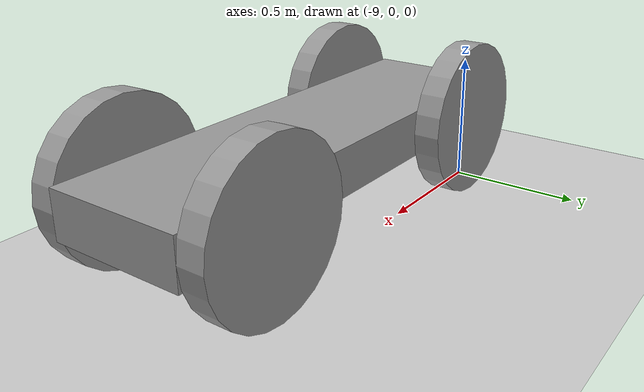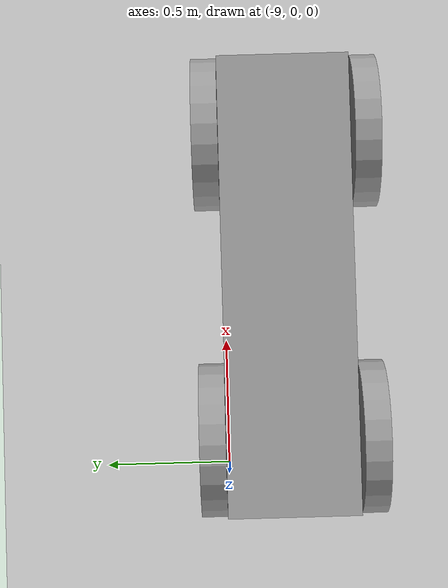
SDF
<sdf version="1.7">
 <world name="default">
  <model name="ground_plane">
   <static>1</static>
   <link name="link">
    <collision name="collision">
     <geometry><plane><normal>0 0 1</normal><size>100 100</size></plane></geometry>
     <surface>
      <contact><collide_bitmask>65535</collide_bitmask></contact>
      <friction><ode><mu>100</mu><mu2>50</mu2></ode></friction>
     </surface>
    </collision>
    <visual name="visual">
     <cast_shadows>0</cast_shadows>
     <geometry><plane><normal>0 0 1</normal><size>100 100</size></plane></geometry>
     <material>
      <script><uri>file://media/materials/scripts/gazebo.material</uri><name>Gazebo/Grey</name></script>
     </material>
    </visual>
   </link>
  </model>
  <model name="4WheelRobot">
   <link name="link_0">
    <inertial>
     <mass>0.166831</mass>
     <inertia>
      <ixx>0.0041914</ixx>
      <ixy>0</ixy>
      <ixz>0</ixz>
      <iyy>0.045684</iyy>
      <iyz>0</iyz>
      <izz>0.0489956</izz>
     </inertia>
    </inertial>
    <pose>2.04119 -2.4071 0.5 0 -0 0</pose>
    <visual name="visual">
     <geometry><box><size>1.80398 0.519461 0.177887</size></box></geometry>
     <material>
      <lighting>1</lighting>
      <script><uri>file://media/materials/scripts/gazebo.material</uri><name>Gazebo/Grey</name></script>
      <shader type="pixel"><normal_map>__default__</normal_map></shader>
      <emissive>0 0 0 1</emissive>
      <ambient>0.3 0.3 0.3 1</ambient>
      <diffuse>0.7 0.7 0.7 1</diffuse>
      <specular>0.01 0.01 0.01 1</specular>
     </material>
    </visual>
    <collision name="collision">
     <geometry><box><size>1.80398 0.519461 0.177887</size></box></geometry>
     <surface>
      <friction>
       <ode><mu>1</mu><mu2>1</mu2><fdir1>0 0 0</fdir1><slip1>0</slip1><slip2>0</slip2></ode>
       <torsional>
        <coefficient>1</coefficient>
        <patch_radius>0</patch_radius>
        <surface_radius>0</surface_radius>
        <use_patch_radius>1</use_patch_radius>
        <ode><slip>0</slip></ode>
       </torsional>
      </friction>
      <bounce><restitution_coefficient>0</restitution_coefficient><threshold>1e+06</threshold></bounce>
      <contact>
       <collide_without_contact>0</collide_without_contact>
       <collide_without_contact_bitmask>1</collide_without_contact_bitmask>
       <collide_bitmask>1</collide_bitmask>
       <ode>
        <soft_cfm>0</soft_cfm>
        <soft_erp>0.2</soft_erp>
        <kp>1e+13</kp>
        <kd>1</kd>
        <max_vel>0.01</max_vel>
        <min_depth>0</min_depth>
       </ode>
       <bullet>
        <split_impulse>1</split_impulse>
        <split_impulse_penetration_threshold>-0.01</split_impulse_penetration_threshold>
        <soft_cfm>0</soft_cfm>
        <soft_erp>0.2</soft_erp>
        <kp>1e+13</kp>
        <kd>1</kd>
       </bullet>
      </contact>
     </surface>
    </collision>
   </link>
   <link name="link_1">
    <inertial>
     <mass>1</mass>
     <inertia><ixx>0.145833</ixx><ixy>0</ixy><ixz>0</ixz><iyy>0.145833</iyy><iyz>0</iyz><izz>0.125</izz></inertia>
    </inertial>
    <pose>2.64318 -2.71686 0.5 1.5707 -0 0</pose>
    <visual name="visual">
     <geometry><cylinder><radius>0.3</radius><length>0.1</length></cylinder></geometry>
     <material>
      <lighting>1</lighting>
      <script><uri>file://media/materials/scripts/gazebo.material</uri><name>Gazebo/Grey</name></script>
      <shader type="pixel"><normal_map>__default__</normal_map></shader>
      <ambient>0.3 0.3 0.3 1</ambient>
      <diffuse>0.7 0.7 0.7 1</diffuse>
      <specular>0.01 0.01 0.01 1</specular>
      <emissive>0 0 0 1</emissive>
     </material>
    </visual>
    <collision name="collision">
     <geometry><cylinder><radius>0.3</radius><length>0.1</length></cylinder></geometry>
     <surface>
      <friction>
       <ode><mu>1</mu><mu2>1</mu2><fdir1>0 0 0</fdir1><slip1>0</slip1><slip2>0</slip2></ode>
       <torsional>
        <coefficient>1</coefficient>
        <patch_radius>0</patch_radius>
        <surface_radius>0</surface_radius>
        <use_patch_radius>1</use_patch_radius>
        <ode><slip>0</slip></ode>
       </torsional>
      </friction>
      <bounce><restitution_coefficient>0</restitution_coefficient><threshold>1e+06</threshold></bounce>
      <contact>
       <collide_without_contact>0</collide_without_contact>
       <collide_without_contact_bitmask>1</collide_without_contact_bitmask>
       <collide_bitmask>1</collide_bitmask>
       <ode>
        <soft_cfm>0</soft_cfm>
        <soft_erp>0.2</soft_erp>
        <kp>1e+13</kp>
        <kd>1</kd>
        <max_vel>0.01</max_vel>
        <min_depth>0</min_depth>
       </ode>
       <bullet>
        <split_impulse>1</split_impulse>
        <split_impulse_penetration_threshold>-0.01</split_impulse_penetration_threshold>
        <soft_cfm>0</soft_cfm>
        <soft_erp>0.2</soft_erp>
        <kp>1e+13</kp>
        <kd>1</kd>
       </bullet>
      </contact>
     </surface>
    </collision>
   </link>
   <link name="link_1_clone">
    <inertial>
     <mass>1</mass>
     <inertia><ixx>0.145833</ixx><ixy>0</ixy><ixz>0</ixz><iyy>0.145833</iyy><iyz>0</iyz><izz>0.125</izz></inertia>
    </inertial>
    <pose>1.4392 -2.09734 0.5 1.5707 -0 0</pose>
    <visual name="visual">
     <geometry><cylinder><radius>0.3</radius><length>0.1</length></cylinder></geometry>
     <material>
      <lighting>1</lighting>
      <script><uri>file://media/materials/scripts/gazebo.material</uri><name>Gazebo/Grey</name></script>
      <shader type="pixel"><normal_map>__default__</normal_map></shader>
      <ambient>0.3 0.3 0.3 1</ambient>
      <diffuse>0.7 0.7 0.7 1</diffuse>
      <specular>0.01 0.01 0.01 1</specular>
      <emissive>0 0 0 1</emissive>
     </material>
    </visual>
    <collision name="collision">
     <geometry><cylinder><radius>0.3</radius><length>0.1</length></cylinder></geometry>
     <surface>
      <friction>
       <ode><mu>1</mu><mu2>1</mu2><fdir1>0 0 0</fdir1><slip1>0</slip1><slip2>0</slip2></ode>
       <torsional>
        <coefficient>1</coefficient>
        <patch_radius>0</patch_radius>
        <surface_radius>0</surface_radius>
        <use_patch_radius>1</use_patch_radius>
        <ode><slip>0</slip></ode>
       </torsional>
      </friction>
      <bounce><restitution_coefficient>0</restitution_coefficient><threshold>1e+06</threshold></bounce>
      <contact>
       <collide_without_contact>0</collide_without_contact>
       <collide_without_contact_bitmask>1</collide_without_contact_bitmask>
       <collide_bitmask>1</collide_bitmask>
       <ode>
        <soft_cfm>0</soft_cfm>
        <soft_erp>0.2</soft_erp>
        <kp>1e+13</kp>
        <kd>1</kd>
        <max_vel>0.01</max_vel>
        <min_depth>0</min_depth>
       </ode>
       <bullet>
        <split_impulse>1</split_impulse>
        <split_impulse_penetration_threshold>-0.01</split_impulse_penetration_threshold>
        <soft_cfm>0</soft_cfm>
        <soft_erp>0.2</soft_erp>
        <kp>1e+13</kp>
        <kd>1</kd>
       </bullet>
      </contact>
     </surface>
    </collision>
   </link>
   <link name="link_1_clone_0">
    <inertial>
     <mass>1</mass>
     <inertia><ixx>0.145833</ixx><ixy>0</ixy><ixz>0</ixz><iyy>0.145833</iyy><iyz>0</iyz><izz>0.125</izz></inertia>
    </inertial>
    <pose>1.4392 -2.71686 0.5 1.5707 -0 0</pose>
    <visual name="visual">
     <geometry><cylinder><radius>0.3</radius><length>0.1</length></cylinder></geometry>
     <material>
      <lighting>1</lighting>
      <script><uri>file://media/materials/scripts/gazebo.material</uri><name>Gazebo/Grey</name></script>
      <shader type="pixel"><normal_map>__default__</normal_map></shader>
      <ambient>0.3 0.3 0.3 1</ambient>
      <diffuse>0.7 0.7 0.7 1</diffuse>
      <specular>0.01 0.01 0.01 1</specular>
      <emissive>0 0 0 1</emissive>
     </material>
    </visual>
    <collision name="collision">
     <geometry><cylinder><radius>0.3</radius><length>0.1</length></cylinder></geometry>
     <surface>
      <friction>
       <ode><mu>1</mu><mu2>1</mu2><fdir1>0 0 0</fdir1><slip1>0</slip1><slip2>0</slip2></ode>
       <torsional>
        <coefficient>1</coefficient>
        <patch_radius>0</patch_radius>
        <surface_radius>0</surface_radius>
        <use_patch_radius>1</use_patch_radius>
        <ode><slip>0</slip></ode>
       </torsional>
      </friction>
      <bounce><restitution_coefficient>0</restitution_coefficient><threshold>1e+06</threshold></bounce>
      <contact>
       <collide_without_contact>0</collide_without_contact>
       <collide_without_contact_bitmask>1</collide_without_contact_bitmask>
       <collide_bitmask>1</collide_bitmask>
       <ode>
        <soft_cfm>0</soft_cfm>
        <soft_erp>0.2</soft_erp>
        <kp>1e+13</kp>
        <kd>1</kd>
        <max_vel>0.01</max_vel>
        <min_depth>0</min_depth>
       </ode>
       <bullet>
        <split_impulse>1</split_impulse>
        <split_impulse_penetration_threshold>-0.01</split_impulse_penetration_threshold>
        <soft_cfm>0</soft_cfm>
        <soft_erp>0.2</soft_erp>
        <kp>1e+13</kp>
        <kd>1</kd>
       </bullet>
      </contact>
     </surface>
    </collision>
   </link>
   <link name="link_1_clone_clone">
    <inertial>
     <mass>1</mass>
     <inertia><ixx>0.145833</ixx><ixy>0</ixy><ixz>0</ixz><iyy>0.145833</iyy><iyz>0</iyz><izz>0.125</izz></inertia>
    </inertial>
    <pose>2.64318 -2.09734 0.5 1.5707 -0 0</pose>
    <visual name="visual">
     <geometry><cylinder><radius>0.3</radius><length>0.1</length></cylinder></geometry>
     <material>
      <lighting>1</lighting>
      <script><uri>file://media/materials/scripts/gazebo.material</uri><name>Gazebo/Grey</name></script>
      <shader type="pixel"><normal_map>__default__</normal_map></shader>
      <ambient>0.3 0.3 0.3 1</ambient>
      <diffuse>0.7 0.7 0.7 1</diffuse>
      <specular>0.01 0.01 0.01 1</specular>
      <emissive>0 0 0 1</emissive>
     </material>
    </visual>
    <collision name="collision">
     <geometry><cylinder><radius>0.3</radius><length>0.1</length></cylinder></geometry>
     <surface>
      <friction>
       <ode><mu>1</mu><mu2>1</mu2><fdir1>0 0 0</fdir1><slip1>0</slip1><slip2>0</slip2></ode>
       <torsional>
        <coefficient>1</coefficient>
        <patch_radius>0</patch_radius>
        <surface_radius>0</surface_radius>
        <use_patch_radius>1</use_patch_radius>
        <ode><slip>0</slip></ode>
       </torsional>
      </friction>
      <bounce><restitution_coefficient>0</restitution_coefficient><threshold>1e+06</threshold></bounce>
      <contact>
       <collide_without_contact>0</collide_without_contact>
       <collide_without_contact_bitmask>1</collide_without_contact_bitmask>
       <collide_bitmask>1</collide_bitmask>
       <ode>
        <soft_cfm>0</soft_cfm>
        <soft_erp>0.2</soft_erp>
        <kp>1e+13</kp>
        <kd>1</kd>
        <max_vel>0.01</max_vel>
        <min_depth>0</min_depth>
       </ode>
       <bullet>
        <split_impulse>1</split_impulse>
        <split_impulse_penetration_threshold>-0.01</split_impulse_penetration_threshold>
        <soft_cfm>0</soft_cfm>
        <soft_erp>0.2</soft_erp>
        <kp>1e+13</kp>
        <kd>1</kd>
       </bullet>
      </contact>
     </surface>
    </collision>
   </link>
   <joint name="link_0_JOINT_10" type="revolute">
    <parent>link_0</parent>
    <child>link_1_clone_clone</child>
    <axis>
     <xyz>0 0 1</xyz>
     <limit>
      <lower>-1.79769e+308</lower>
      <upper>1.79769e+308</upper>
      <effort>-1</effort>
      <velocity>-1</velocity>
     </limit>
     <dynamics>
      <spring_reference>0</spring_reference>
      <spring_stiffness>0</spring_stiffness>
      <damping>0</damping>
      <friction>0</friction>
     </dynamics>
    </axis>
    <physics>
     <ode><limit><cfm>0</cfm><erp>0.2</erp></limit><suspension><cfm>0</cfm><erp>0.2</erp></suspension></ode>
    </physics>
   </joint>
   <joint name="link_0_JOINT_11" type="revolute">
    <parent>link_0</parent>
    <child>link_1_clone_0</child>
    <axis>
     <xyz>0 0 1</xyz>
     <limit>
      <lower>-1.79769e+308</lower>
      <upper>1.79769e+308</upper>
      <effort>-1</effort>
      <velocity>-1</velocity>
     </limit>
     <dynamics>
      <spring_reference>0</spring_reference>
      <spring_stiffness>0</spring_stiffness>
      <damping>0</damping>
      <friction>0</friction>
     </dynamics>
    </axis>
    <physics>
     <ode><limit><cfm>0</cfm><erp>0.2</erp></limit><suspension><cfm>0</cfm><erp>0.2</erp></suspension></ode>
    </physics>
   </joint>
   <joint name="link_0_JOINT_8" type="revolute">
    <parent>link_0</parent>
    <child>link_1</child>
    <axis>
     <xyz>0 0 1</xyz>
     <limit>
      <lower>-1.79769e+308</lower>
      <upper>1.79769e+308</upper>
      <effort>-1</effort>
      <velocity>-1</velocity>
     </limit>
     <dynamics>
      <spring_reference>0</spring_reference>
      <spring_stiffness>0</spring_stiffness>
      <damping>0</damping>
      <friction>0</friction>
     </dynamics>
    </axis>
    <physics>
     <ode><limit><cfm>0</cfm><erp>0.2</erp></limit><suspension><cfm>0</cfm><erp>0.2</erp></suspension></ode>
    </physics>
   </joint>
   <joint name="link_0_JOINT_9" type="revolute">
    <parent>link_0</parent>
    <child>link_1_clone</child>
    <axis>
     <xyz>0 0 1</xyz>
     <limit>
      <lower>-1.79769e+308</lower>
      <upper>1.79769e+308</upper>
      <effort>-1</effort>
      <velocity>-1</velocity>
     </limit>
     <dynamics>
      <spring_reference>0</spring_reference>
      <spring_stiffness>0</spring_stiffness>
      <damping>0</damping>
      <friction>0</friction>
     </dynamics>
    </axis>
    <physics>
     <ode><limit><cfm>0</cfm><erp>0.2</erp></limit><suspension><cfm>0</cfm><erp>0.2</erp></suspension></ode>
    </physics>
   </joint>
   <static>0</static>
   <pose>-10.3276 2.15728 -0.199919 3.2e-05 1e-06 0.000316</pose>
  </model>
 </world>
</sdf>
